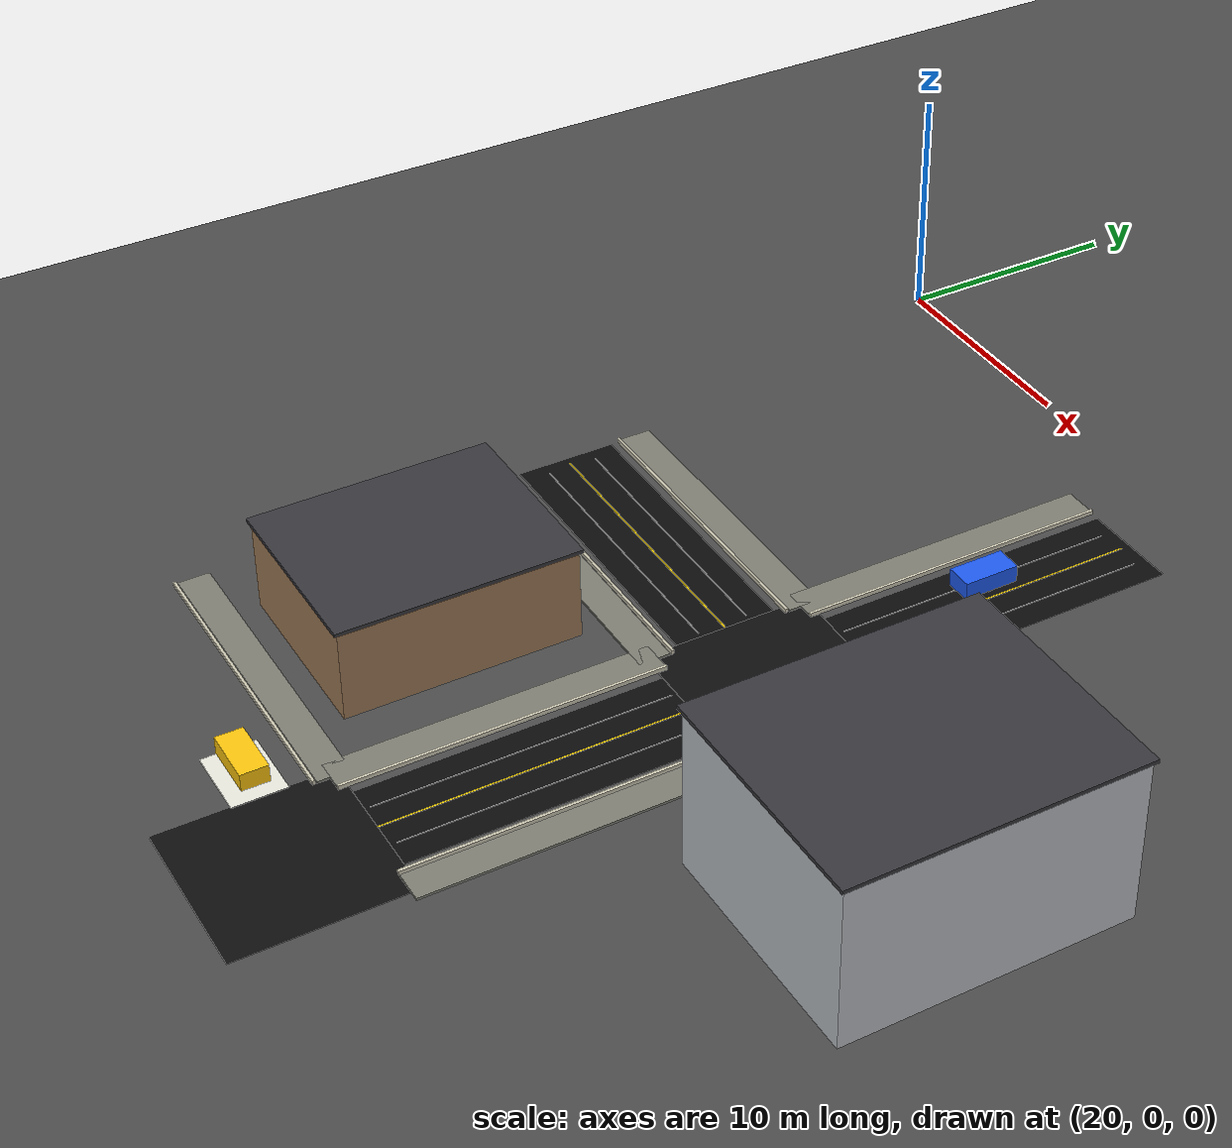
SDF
<sdf version="1.9">
 <world name="smart_city_world">
  <model name="ground">
   <static>true</static>
   <link name="link">
    <collision name="collision"><geometry><box><size>145 145 0.05</size></box></geometry></collision>
    <visual name="visual">
     <geometry><box><size>145 145 0.05</size></box></geometry>
     <material><ambient>0.30 0.30 0.30 1</ambient><diffuse>0.30 0.30 0.30 1</diffuse></material>
    </visual>
   </link>
  </model>
  <model name="road_e16">
   <static>true</static>
   <pose>30.000 -20.000 0.018 0 0 0.000000</pose>
   <link name="link">
    <collision name="collision"><geometry><box><size>13.600 4.350 0.030</size></box></geometry></collision>
    <visual name="visual">
     <geometry><box><size>13.600 4.350 0.030</size></box></geometry>
     <material><ambient>0.045 0.047 0.05 1</ambient><diffuse>0.045 0.047 0.05 1</diffuse></material>
    </visual>
   </link>
  </model>
  <model name="center_line_e16">
   <static>true</static>
   <pose>30.000 -20.000 0.052 0 0 0.000000</pose>
   <link name="link">
    <visual name="visual">
     <geometry><box><size>12.800 0.070 0.010</size></box></geometry>
     <material><ambient>1 0.86 0.05 1</ambient><diffuse>1 0.86 0.05 1</diffuse></material>
    </visual>
   </link>
  </model>
  <model name="sidewalk_e16_L">
   <static>true</static>
   <pose>30.000 -16.650 0.075 0 0 0.000000</pose>
   <link name="link">
    <visual name="visual">
     <geometry><box><size>13.600 1.350 0.100</size></box></geometry>
     <material><ambient>0.5 0.5 0.46 1</ambient><diffuse>0.5 0.5 0.46 1</diffuse></material>
    </visual>
   </link>
  </model>
  <model name="curb_e16_L">
   <static>true</static>
   <pose>30.000 -17.450 0.130 0 0 0.000000</pose>
   <link name="link">
    <visual name="visual">
     <geometry><box><size>13.600 0.120 0.180</size></box></geometry>
     <material><ambient>0.8 0.78 0.7 1</ambient><diffuse>0.8 0.78 0.7 1</diffuse></material>
    </visual>
   </link>
  </model>
  <model name="edge_line_e16_L">
   <static>true</static>
   <pose>30.000 -18.920 0.054 0 0 0.000000</pose>
   <link name="link">
    <visual name="visual">
     <geometry><box><size>12.400 0.035 0.010</size></box></geometry>
     <material><ambient>0.85 0.85 0.85 1</ambient><diffuse>0.85 0.85 0.85 1</diffuse></material>
    </visual>
   </link>
  </model>
  <model name="sidewalk_e16_R">
   <static>true</static>
   <pose>30.000 -23.350 0.075 0 0 0.000000</pose>
   <link name="link">
    <visual name="visual">
     <geometry><box><size>13.600 1.350 0.100</size></box></geometry>
     <material><ambient>0.5 0.5 0.46 1</ambient><diffuse>0.5 0.5 0.46 1</diffuse></material>
    </visual>
   </link>
  </model>
  <model name="curb_e16_R">
   <static>true</static>
   <pose>30.000 -22.550 0.130 0 0 0.000000</pose>
   <link name="link">
    <visual name="visual">
     <geometry><box><size>13.600 0.120 0.180</size></box></geometry>
     <material><ambient>0.8 0.78 0.7 1</ambient><diffuse>0.8 0.78 0.7 1</diffuse></material>
    </visual>
   </link>
  </model>
  <model name="edge_line_e16_R">
   <static>true</static>
   <pose>30.000 -21.080 0.054 0 0 0.000000</pose>
   <link name="link">
    <visual name="visual">
     <geometry><box><size>12.400 0.035 0.010</size></box></geometry>
     <material><ambient>0.85 0.85 0.85 1</ambient><diffuse>0.85 0.85 0.85 1</diffuse></material>
    </visual>
   </link>
  </model>
  <model name="sidewalk_e20_L">
   <static>true</static>
   <pose>30.000 -36.650 0.075 0 0 0.000000</pose>
   <link name="link">
    <visual name="visual">
     <geometry><box><size>13.600 1.350 0.100</size></box></geometry>
     <material><ambient>0.5 0.5 0.46 1</ambient><diffuse>0.5 0.5 0.46 1</diffuse></material>
    </visual>
   </link>
  </model>
  <model name="curb_e20_L">
   <static>true</static>
   <pose>30.000 -37.450 0.130 0 0 0.000000</pose>
   <link name="link">
    <visual name="visual">
     <geometry><box><size>13.600 0.120 0.180</size></box></geometry>
     <material><ambient>0.8 0.78 0.7 1</ambient><diffuse>0.8 0.78 0.7 1</diffuse></material>
    </visual>
   </link>
  </model>
  <model name="road_e39">
   <static>true</static>
   <pose>40.000 -10.000 0.018 0 0 -1.570796</pose>
   <link name="link">
    <collision name="collision"><geometry><box><size>13.600 4.350 0.030</size></box></geometry></collision>
    <visual name="visual">
     <geometry><box><size>13.600 4.350 0.030</size></box></geometry>
     <material><ambient>0.045 0.047 0.05 1</ambient><diffuse>0.045 0.047 0.05 1</diffuse></material>
    </visual>
   </link>
  </model>
  <model name="center_line_e39">
   <static>true</static>
   <pose>40.000 -10.000 0.052 0 0 -1.570796</pose>
   <link name="link">
    <visual name="visual">
     <geometry><box><size>12.800 0.070 0.010</size></box></geometry>
     <material><ambient>1 0.86 0.05 1</ambient><diffuse>1 0.86 0.05 1</diffuse></material>
    </visual>
   </link>
  </model>
  <model name="edge_line_e39_L">
   <static>true</static>
   <pose>41.080 -10.000 0.054 0 0 -1.570796</pose>
   <link name="link">
    <visual name="visual">
     <geometry><box><size>12.400 0.035 0.010</size></box></geometry>
     <material><ambient>0.85 0.85 0.85 1</ambient><diffuse>0.85 0.85 0.85 1</diffuse></material>
    </visual>
   </link>
  </model>
  <model name="sidewalk_e39_R">
   <static>true</static>
   <pose>36.650 -10.000 0.075 0 0 -1.570796</pose>
   <link name="link">
    <visual name="visual">
     <geometry><box><size>13.600 1.350 0.100</size></box></geometry>
     <material><ambient>0.5 0.5 0.46 1</ambient><diffuse>0.5 0.5 0.46 1</diffuse></material>
    </visual>
   </link>
  </model>
  <model name="curb_e39_R">
   <static>true</static>
   <pose>37.450 -10.000 0.130 0 0 -1.570796</pose>
   <link name="link">
    <visual name="visual">
     <geometry><box><size>13.600 0.120 0.180</size></box></geometry>
     <material><ambient>0.8 0.78 0.7 1</ambient><diffuse>0.8 0.78 0.7 1</diffuse></material>
    </visual>
   </link>
  </model>
  <model name="edge_line_e39_R">
   <static>true</static>
   <pose>38.920 -10.000 0.054 0 0 -1.570796</pose>
   <link name="link">
    <visual name="visual">
     <geometry><box><size>12.400 0.035 0.010</size></box></geometry>
     <material><ambient>0.85 0.85 0.85 1</ambient><diffuse>0.85 0.85 0.85 1</diffuse></material>
    </visual>
   </link>
  </model>
  <model name="road_e40">
   <static>true</static>
   <pose>40.000 -30.000 0.018 0 0 -1.570796</pose>
   <link name="link">
    <collision name="collision"><geometry><box><size>13.600 4.350 0.030</size></box></geometry></collision>
    <visual name="visual">
     <geometry><box><size>13.600 4.350 0.030</size></box></geometry>
     <material><ambient>0.045 0.047 0.05 1</ambient><diffuse>0.045 0.047 0.05 1</diffuse></material>
    </visual>
   </link>
  </model>
  <model name="center_line_e40">
   <static>true</static>
   <pose>40.000 -30.000 0.052 0 0 -1.570796</pose>
   <link name="link">
    <visual name="visual">
     <geometry><box><size>12.800 0.070 0.010</size></box></geometry>
     <material><ambient>1 0.86 0.05 1</ambient><diffuse>1 0.86 0.05 1</diffuse></material>
    </visual>
   </link>
  </model>
  <model name="sidewalk_e40_L">
   <static>true</static>
   <pose>43.350 -30.000 0.075 0 0 -1.570796</pose>
   <link name="link">
    <visual name="visual">
     <geometry><box><size>13.600 1.350 0.100</size></box></geometry>
     <material><ambient>0.5 0.5 0.46 1</ambient><diffuse>0.5 0.5 0.46 1</diffuse></material>
    </visual>
   </link>
  </model>
  <model name="curb_e40_L">
   <static>true</static>
   <pose>42.550 -30.000 0.130 0 0 -1.570796</pose>
   <link name="link">
    <visual name="visual">
     <geometry><box><size>13.600 0.120 0.180</size></box></geometry>
     <material><ambient>0.8 0.78 0.7 1</ambient><diffuse>0.8 0.78 0.7 1</diffuse></material>
    </visual>
   </link>
  </model>
  <model name="edge_line_e40_L">
   <static>true</static>
   <pose>41.080 -30.000 0.054 0 0 -1.570796</pose>
   <link name="link">
    <visual name="visual">
     <geometry><box><size>12.400 0.035 0.010</size></box></geometry>
     <material><ambient>0.85 0.85 0.85 1</ambient><diffuse>0.85 0.85 0.85 1</diffuse></material>
    </visual>
   </link>
  </model>
  <model name="sidewalk_e40_R">
   <static>true</static>
   <pose>36.650 -30.000 0.075 0 0 -1.570796</pose>
   <link name="link">
    <visual name="visual">
     <geometry><box><size>13.600 1.350 0.100</size></box></geometry>
     <material><ambient>0.5 0.5 0.46 1</ambient><diffuse>0.5 0.5 0.46 1</diffuse></material>
    </visual>
   </link>
  </model>
  <model name="curb_e40_R">
   <static>true</static>
   <pose>37.450 -30.000 0.130 0 0 -1.570796</pose>
   <link name="link">
    <visual name="visual">
     <geometry><box><size>13.600 0.120 0.180</size></box></geometry>
     <material><ambient>0.8 0.78 0.7 1</ambient><diffuse>0.8 0.78 0.7 1</diffuse></material>
    </visual>
   </link>
  </model>
  <model name="edge_line_e40_R">
   <static>true</static>
   <pose>38.920 -30.000 0.054 0 0 -1.570796</pose>
   <link name="link">
    <visual name="visual">
     <geometry><box><size>12.400 0.035 0.010</size></box></geometry>
     <material><ambient>0.85 0.85 0.85 1</ambient><diffuse>0.85 0.85 0.85 1</diffuse></material>
    </visual>
   </link>
  </model>
  <model name="intersection_plate_n20">
   <static>true</static>
   <pose>40.000 -20.000 0.025 0 0 0.000000</pose>
   <link name="link">
    <collision name="collision"><geometry><box><size>7.200 7.200 0.035</size></box></geometry></collision>
    <visual name="visual">
     <geometry><box><size>7.200 7.200 0.035</size></box></geometry>
     <material><ambient>0.055 0.055 0.058 1</ambient><diffuse>0.055 0.055 0.058 1</diffuse></material>
    </visual>
   </link>
  </model>
  <model name="intersection_plate_n25">
   <static>true</static>
   <pose>40.000 -40.000 0.025 0 0 0.000000</pose>
   <link name="link">
    <collision name="collision"><geometry><box><size>7.200 7.200 0.035</size></box></geometry></collision>
    <visual name="visual">
     <geometry><box><size>7.200 7.200 0.035</size></box></geometry>
     <material><ambient>0.055 0.055 0.058 1</ambient><diffuse>0.055 0.055 0.058 1</diffuse></material>
    </visual>
   </link>
  </model>
  <model name="parking_taxi_1">
   <static>true</static>
   <pose>35.000 -39.400 0.052 0 0 0.000000</pose>
   <link name="link">
    <collision name="collision"><geometry><box><size>3.000 2.250 0.050</size></box></geometry></collision>
    <visual name="visual">
     <geometry><box><size>3.000 2.250 0.050</size></box></geometry>
     <material><ambient>0.92 0.92 0.88 1</ambient><diffuse>0.92 0.92 0.88 1</diffuse></material>
    </visual>
   </link>
  </model>
  <model name="hospital">
   <static>true</static>
   <pose>52.000 -22.000 3.500 0 0 0.000000</pose>
   <link name="link">
    <collision name="collision"><geometry><box><size>10.000 12.000 7.000</size></box></geometry></collision>
    <visual name="visual">
     <geometry><box><size>10.000 12.000 7.000</size></box></geometry>
     <material><ambient>0.74 0.76 0.78 1</ambient><diffuse>0.74 0.76 0.78 1</diffuse></material>
    </visual>
   </link>
  </model>
  <model name="hospital_roof">
   <static>true</static>
   <pose>52.000 -22.000 7.080 0 0 0.000000</pose>
   <link name="link">
    <visual name="visual">
     <geometry><box><size>10.250 12.250 0.160</size></box></geometry>
     <material><ambient>0.22 0.22 0.24 1</ambient><diffuse>0.22 0.22 0.24 1</diffuse></material>
    </visual>
   </link>
  </model>
  <model name="market">
   <static>true</static>
   <pose>30.000 -30.000 2.000 0 0 0.000000</pose>
   <link name="link">
    <collision name="collision"><geometry><box><size>8.000 10.000 4.000</size></box></geometry></collision>
    <visual name="visual">
     <geometry><box><size>8.000 10.000 4.000</size></box></geometry>
     <material><ambient>0.62 0.48 0.34 1</ambient><diffuse>0.62 0.48 0.34 1</diffuse></material>
    </visual>
   </link>
  </model>
  <model name="market_roof">
   <static>true</static>
   <pose>30.000 -30.000 4.080 0 0 0.000000</pose>
   <link name="link">
    <visual name="visual">
     <geometry><box><size>8.250 10.250 0.160</size></box></geometry>
     <material><ambient>0.22 0.22 0.24 1</ambient><diffuse>0.22 0.22 0.24 1</diffuse></material>
    </visual>
   </link>
  </model>
  <model name="taxi_1">
   <pose>35.000 -39.400 0.28 0 0 3.1400</pose>
   <link name="base_link">
    <inertial>
     <pose>0 0 0.18 0 0 0</pose>
     <mass>1200</mass>
     <inertia><ixx>190</ixx><iyy>635</iyy><izz>710</izz><ixy>0</ixy><ixz>0</ixz><iyz>0</iyz></inertia>
    </inertial>
    <collision name="body_collision">
     <pose>0 0 0.48 0 0 0</pose>
     <geometry><box><size>2.4 1.15 0.75</size></box></geometry>
     <surface>
      <friction><ode><mu>4.0</mu><mu2>4.0</mu2><slip1>0.0</slip1><slip2>0.0</slip2></ode></friction>
      <contact>
       <ode><kp>1200000</kp><kd>24000</kd><max_vel>0.05</max_vel><min_depth>0.001</min_depth></ode>
      </contact>
      <bounce><restitution_coefficient>0.0</restitution_coefficient><threshold>100000.0</threshold></bounce>
     </surface>
    </collision>
    <visual name="body_visual">
     <pose>0 0 0.48 0 0 0</pose>
     <geometry><box><size>2.4 1.15 0.75</size></box></geometry>
     <material><ambient>1.00 0.78 0.05 1</ambient><diffuse>1.00 0.78 0.05 1</diffuse></material>
    </visual>
    <sensor name="lidar" type="gpu_lidar">
     <pose>1.320 0 1.350 0 0 0</pose>
     <topic>/taxi_1/scan</topic>
     <update_rate>10</update_rate>
     <lidar>
      <scan>
       <horizontal>
        <samples>360</samples>
        <resolution>1</resolution>
        <min_angle>-3.14159</min_angle>
        <max_angle>3.14159</max_angle>
       </horizontal>
      </scan>
      <range><min>0.12</min><max>18.0</max><resolution>0.03</resolution></range>
     </lidar>
     <always_on>1</always_on>
     <visualize>false</visualize>
    </sensor>
   </link>
   <link name="left_wheel">
    <pose>0 0.460 0.180 1.5708 0 0</pose>
    <collision name="collision">
     <geometry><cylinder><radius>0.18</radius><length>0.16</length></cylinder></geometry>
     <surface>
      <friction><ode><mu>4.0</mu><mu2>4.0</mu2><slip1>0.0</slip1><slip2>0.0</slip2></ode></friction>
      <contact>
       <ode><kp>1200000</kp><kd>24000</kd><max_vel>0.05</max_vel><min_depth>0.001</min_depth></ode>
      </contact>
      <bounce><restitution_coefficient>0.0</restitution_coefficient><threshold>100000.0</threshold></bounce>
     </surface>
    </collision>
    <visual name="visual">
     <geometry><cylinder><radius>0.18</radius><length>0.16</length></cylinder></geometry>
     <material><ambient>0.01 0.01 0.01 1</ambient><diffuse>0.01 0.01 0.01 1</diffuse></material>
    </visual>
   </link>
   <link name="right_wheel">
    <pose>0 -0.460 0.180 1.5708 0 0</pose>
    <collision name="collision">
     <geometry><cylinder><radius>0.18</radius><length>0.16</length></cylinder></geometry>
     <surface>
      <friction><ode><mu>4.0</mu><mu2>4.0</mu2><slip1>0.0</slip1><slip2>0.0</slip2></ode></friction>
      <contact>
       <ode><kp>1200000</kp><kd>24000</kd><max_vel>0.05</max_vel><min_depth>0.001</min_depth></ode>
      </contact>
      <bounce><restitution_coefficient>0.0</restitution_coefficient><threshold>100000.0</threshold></bounce>
     </surface>
    </collision>
    <visual name="visual">
     <geometry><cylinder><radius>0.18</radius><length>0.16</length></cylinder></geometry>
     <material><ambient>0.01 0.01 0.01 1</ambient><diffuse>0.01 0.01 0.01 1</diffuse></material>
    </visual>
   </link>
   <joint name="left_wheel_joint" type="revolute">
    <parent>base_link</parent>
    <child>left_wheel</child>
    <axis>
     <xyz>0 0 1</xyz>
     <limit><lower>-1e16</lower><upper>1e16</upper></limit>
     <dynamics><damping>2.5</damping><friction>0.8</friction></dynamics>
    </axis>
   </joint>
   <joint name="right_wheel_joint" type="revolute">
    <parent>base_link</parent>
    <child>right_wheel</child>
    <axis>
     <xyz>0 0 1</xyz>
     <limit><lower>-1e16</lower><upper>1e16</upper></limit>
     <dynamics><damping>2.5</damping><friction>0.8</friction></dynamics>
    </axis>
   </joint>
   <plugin filename="gz-sim-diff-drive-system" name="gz::sim::systems::DiffDrive">
    <left_joint>left_wheel_joint</left_joint>
    <right_joint>right_wheel_joint</right_joint>
    <wheel_separation>0.92</wheel_separation>
    <wheel_radius>0.18</wheel_radius>
    <topic>/taxi_1/cmd_vel</topic>
    <odom_topic>/taxi_1/odom</odom_topic>
    <frame_id>taxi_1/odom</frame_id>
    <child_frame_id>taxi_1/base_link</child_frame_id>
    <odom_publish_frequency>30</odom_publish_frequency>
   </plugin>
   <plugin filename="libmodel_world_pose_publisher.so" name="smart_city::ModelWorldPosePublisher"/>
  </model>
  <model name="private_car_3">
   <pose>39.400 -10.000 0.28 0 0 1.5700</pose>
   <link name="base_link">
    <inertial>
     <pose>0 0 0.18 0 0 0</pose>
     <mass>1200</mass>
     <inertia><ixx>190</ixx><iyy>635</iyy><izz>710</izz><ixy>0</ixy><ixz>0</ixz><iyz>0</iyz></inertia>
    </inertial>
    <collision name="body_collision">
     <pose>0 0 0.48 0 0 0</pose>
     <geometry><box><size>2.4 1.15 0.75</size></box></geometry>
     <surface>
      <friction><ode><mu>4.0</mu><mu2>4.0</mu2><slip1>0.0</slip1><slip2>0.0</slip2></ode></friction>
      <contact>
       <ode><kp>1200000</kp><kd>24000</kd><max_vel>0.05</max_vel><min_depth>0.001</min_depth></ode>
      </contact>
      <bounce><restitution_coefficient>0.0</restitution_coefficient><threshold>100000.0</threshold></bounce>
     </surface>
    </collision>
    <visual name="body_visual">
     <pose>0 0 0.48 0 0 0</pose>
     <geometry><box><size>2.4 1.15 0.75</size></box></geometry>
     <material><ambient>0.12 0.36 0.95 1</ambient><diffuse>0.12 0.36 0.95 1</diffuse></material>
    </visual>
    <sensor name="lidar" type="gpu_lidar">
     <pose>1.220 0 1.250 0 0 0</pose>
     <topic>/private_car_3/scan</topic>
     <update_rate>10</update_rate>
     <lidar>
      <scan>
       <horizontal>
        <samples>360</samples>
        <resolution>1</resolution>
        <min_angle>-3.14159</min_angle>
        <max_angle>3.14159</max_angle>
       </horizontal>
      </scan>
      <range><min>0.12</min><max>18.0</max><resolution>0.03</resolution></range>
     </lidar>
     <always_on>1</always_on>
     <visualize>false</visualize>
    </sensor>
   </link>
   <link name="left_wheel">
    <pose>0 0.425 0.170 1.5708 0 0</pose>
    <collision name="collision">
     <geometry><cylinder><radius>0.17</radius><length>0.16</length></cylinder></geometry>
     <surface>
      <friction><ode><mu>4.0</mu><mu2>4.0</mu2><slip1>0.0</slip1><slip2>0.0</slip2></ode></friction>
      <contact>
       <ode><kp>1200000</kp><kd>24000</kd><max_vel>0.05</max_vel><min_depth>0.001</min_depth></ode>
      </contact>
      <bounce><restitution_coefficient>0.0</restitution_coefficient><threshold>100000.0</threshold></bounce>
     </surface>
    </collision>
    <visual name="visual">
     <geometry><cylinder><radius>0.17</radius><length>0.16</length></cylinder></geometry>
     <material><ambient>0.01 0.01 0.01 1</ambient><diffuse>0.01 0.01 0.01 1</diffuse></material>
    </visual>
   </link>
   <link name="right_wheel">
    <pose>0 -0.425 0.170 1.5708 0 0</pose>
    <collision name="collision">
     <geometry><cylinder><radius>0.17</radius><length>0.16</length></cylinder></geometry>
     <surface>
      <friction><ode><mu>4.0</mu><mu2>4.0</mu2><slip1>0.0</slip1><slip2>0.0</slip2></ode></friction>
      <contact>
       <ode><kp>1200000</kp><kd>24000</kd><max_vel>0.05</max_vel><min_depth>0.001</min_depth></ode>
      </contact>
      <bounce><restitution_coefficient>0.0</restitution_coefficient><threshold>100000.0</threshold></bounce>
     </surface>
    </collision>
    <visual name="visual">
     <geometry><cylinder><radius>0.17</radius><length>0.16</length></cylinder></geometry>
     <material><ambient>0.01 0.01 0.01 1</ambient><diffuse>0.01 0.01 0.01 1</diffuse></material>
    </visual>
   </link>
   <joint name="left_wheel_joint" type="revolute">
    <parent>base_link</parent>
    <child>left_wheel</child>
    <axis>
     <xyz>0 0 1</xyz>
     <limit><lower>-1e16</lower><upper>1e16</upper></limit>
     <dynamics><damping>2.5</damping><friction>0.8</friction></dynamics>
    </axis>
   </joint>
   <joint name="right_wheel_joint" type="revolute">
    <parent>base_link</parent>
    <child>right_wheel</child>
    <axis>
     <xyz>0 0 1</xyz>
     <limit><lower>-1e16</lower><upper>1e16</upper></limit>
     <dynamics><damping>2.5</damping><friction>0.8</friction></dynamics>
    </axis>
   </joint>
   <plugin filename="gz-sim-diff-drive-system" name="gz::sim::systems::DiffDrive">
    <left_joint>left_wheel_joint</left_joint>
    <right_joint>right_wheel_joint</right_joint>
    <wheel_separation>0.85</wheel_separation>
    <wheel_radius>0.17</wheel_radius>
    <topic>/private_car_3/cmd_vel</topic>
    <odom_topic>/private_car_3/odom</odom_topic>
    <frame_id>private_car_3/odom</frame_id>
    <child_frame_id>private_car_3/base_link</child_frame_id>
    <odom_publish_frequency>30</odom_publish_frequency>
   </plugin>
   <plugin filename="libmodel_world_pose_publisher.so" name="smart_city::ModelWorldPosePublisher"/>
  </model>
 </world>
</sdf>
